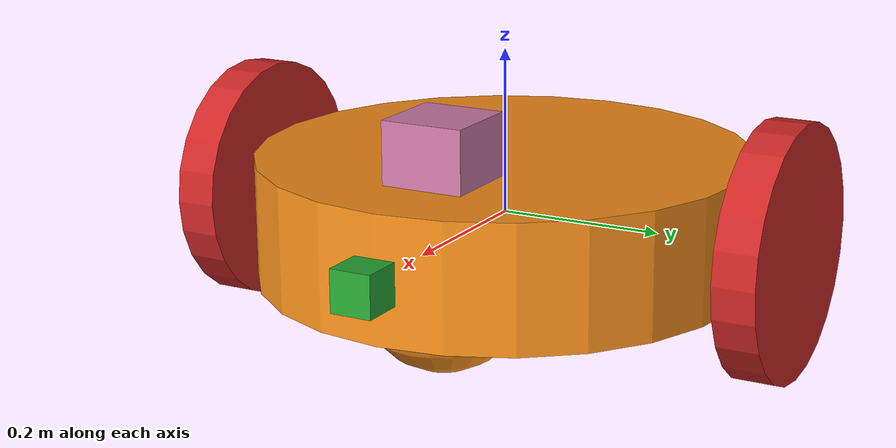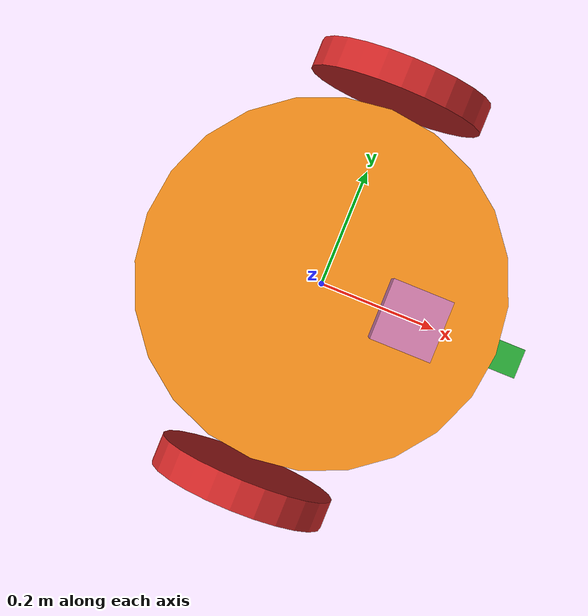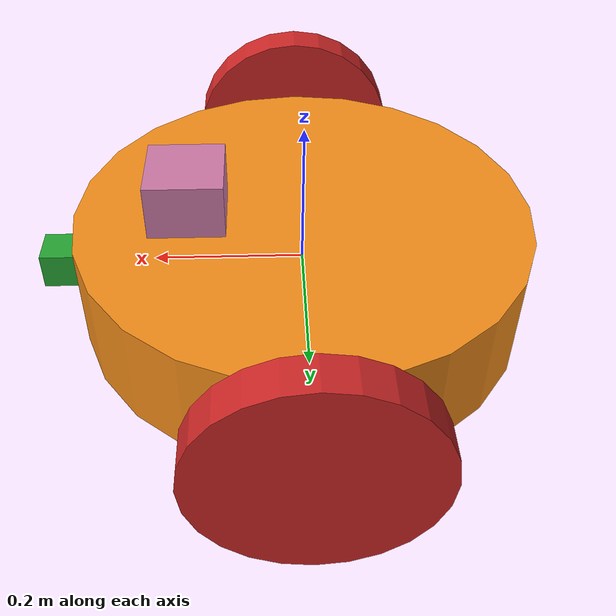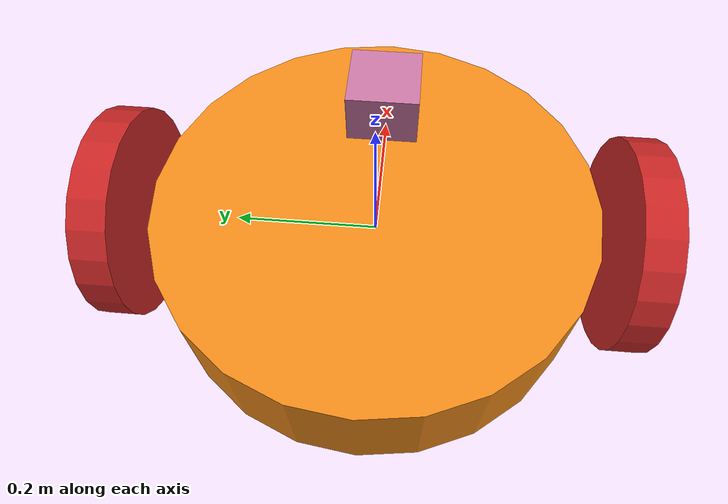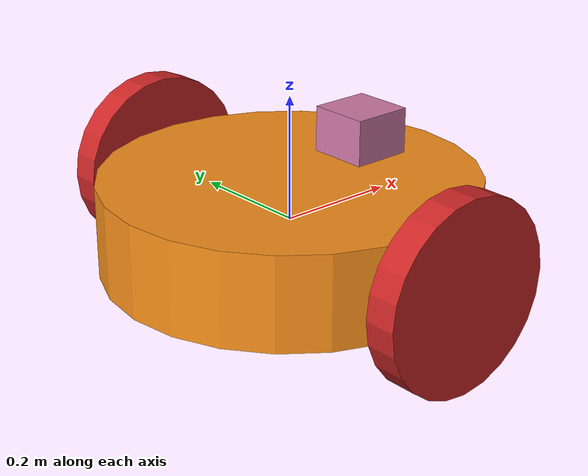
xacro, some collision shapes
<?xml version='1.0'?>

<robot name="my_robot" xmlns:xacro="http://www.ros.org/wiki/xacro">

  <xacro:include filename="$(find my_robot)/urdf/my_robot.gazebo" />

  <link name="robot_footprint"></link>

  <joint name="robot_footprint_joint" type="fixed">
    <origin xyz="0 0 0" rpy="0 0 0" />
    <parent link="robot_footprint"/>
    <child link="chassis" />
  </joint>

  <link name='chassis'>
    <pose>0 0 0.1 0 0 0</pose>

    <inertial>
      <mass value="15.0"/>
      <origin xyz="0.0 0 0" rpy=" 0 0 0"/>
      <inertia
          ixx="0.1" ixy="0" ixz="0"
          iyy="0.1" iyz="0"
          izz="0.1"
      />
    </inertial>

    <collision name='collision'>
      <origin xyz="0 0 0" rpy=" 0 0 0"/>
      <geometry>
        <cylinder radius="0.3" length='0.15'/>
      </geometry>
    </collision>

    <visual name='chassis_visual'>
      <origin xyz="0 0 0" rpy=" 0 0 0"/>
      <geometry>
        <cylinder radius="0.3" length='0.15'/>
      </geometry>
    </visual>

    <collision name='back_caster_collision'>
      <origin xyz="-0.15 0 -0.05" rpy=" 0 0 0"/>
      <geometry>
        <sphere radius="0.0999"/>
      </geometry>
    </collision>

    <visual name='back_caster_visual'>
      <origin xyz="-0.15 0 -0.05" rpy=" 0 0 0"/>
      <geometry>
        <sphere radius="0.1"/>
      </geometry>
    </visual>

    <collision name='front_caster_collision'>
      <origin xyz="0.15 0 -0.05" rpy=" 0 0 0"/>
      <geometry>
        <sphere radius="0.0999"/>
      </geometry>
    </collision>

    <visual name='front_caster_visual'>
      <origin xyz="0.15 0 -0.05" rpy=" 0 0 0"/>
      <geometry>
        <sphere radius="0.1"/>
      </geometry>
    </visual>

  </link>

  <link name='left_wheel'>
    <pose>0 0 0 0 0 0</pose>

    <inertial>
      <mass value="5.0"/>
      <origin xyz="0.0 0 0" rpy=" 0 1.5707 1.5707"/>
      <inertia
          ixx="0.1" ixy="0" ixz="0"
          iyy="0.1" iyz="0"
          izz="0.1"
      />
    </inertial>

    <collision name='left_wheel_collision'>
      <origin xyz="0 0 0" rpy=" 0 1.5707 1.5707"/>
      <geometry>
        <cylinder radius=".15" length='0.05'/>
      </geometry>
    </collision>

    <visual name='left_wheel_visual'>
      <origin xyz="0 0 0" rpy=" 0 1.5707 1.5707"/>
      <geometry>
        <cylinder radius=".15" length='0.05'/>
      </geometry>
    </visual>
  </link>

  <link name='right_wheel'>
    <pose>0 0 0 0 0 0</pose>

    <inertial>
      <mass value="5.0"/>
      <origin xyz="0.0 0 0" rpy=" 0 1.5707 1.5707"/>
      <inertia
          ixx="0.1" ixy="0" ixz="0"
          iyy="0.1" iyz="0"
          izz="0.1"
      />
    </inertial>

    <collision name='right_wheel_collision'>
      <origin xyz="0 0 0" rpy=" 0 1.5707 1.5707"/>
      <geometry>
        <cylinder radius=".15" length='0.05'/>
      </geometry>
    </collision>

    <visual name='right_wheel__visual'>
      <origin xyz="0 0 0" rpy=" 0 1.5707 1.5707"/>
      <geometry>
        <cylinder radius=".15" length='0.05'/>
      </geometry>
    </visual>
  </link>

  <link name='camera'>
    <pose>0 0 0 0 0 0</pose>

    <inertial>
      <mass value="0.1"/>
      <origin xyz="0.0 0 0" rpy=" 0 0 0"/>
      <inertia
          ixx="1e-6" ixy="0" ixz="0"
          iyy="1e-6" iyz="0"
          izz="1e-6"
      />
    </inertial>

    <collision name='camera_collision'>
      <origin xyz="0 0 0" rpy=" 0 0 0"/>
      <geometry>
        <box size = "0.05 0.05 0.05"/>
      </geometry>
    </collision>

    <visual name='camera__visual'>
      <origin xyz="0 0 0" rpy=" 0 0 0"/>
      <geometry>
        <box size = "0.05 0.05 0.05"/>
      </geometry>
    </visual>
  </link>

  <link name="camera_link_optical">
  </link>

  <joint name="camera_optical_joint" type="fixed">
    <origin xyz="0 0 0" rpy="-1.5707 0 -1.5707"/>
    <parent link="camera"/>
    <child link="camera_link_optical"/>
  </joint>

  <joint name="camera_joint" type="fixed">
    <origin xyz="0.325 0 0" rpy="0 0 0"/>
    <child link="camera"/>
    <parent link="chassis"/>
    <axis xyz="0 1 0"/>
  </joint>

  <joint type="continuous" name="left_wheel_hinge">
    <origin xyz="0 0.35 0" rpy="0 0 0"/>
    <child link="left_wheel"/>
    <parent link="chassis"/>
    <axis xyz="0 1 0" rpy="0 0 0"/>
    <limit effort="10000" velocity="1000"/>
    <dynamics damping="1.0" friction="1.0"/>
  </joint>

  <joint type="continuous" name="right_wheel_hinge">
    <origin xyz="0 -0.35 0" rpy="0 0 0"/>
    <child link="right_wheel"/>
    <parent link="chassis"/>
    <axis xyz="0 1 0" rpy="0 0 0"/>
    <limit effort="10000" velocity="1000"/>
    <dynamics damping="1.0" friction="1.0"/>
  </joint>

  <link name='hokuyo'>
    <pose>0 0 0 0 0 0</pose>

    <inertial>
      <mass value="1e-5"/>
      <origin xyz="0.0 0 0" rpy=" 0 0 0"/>
      <inertia
          ixx="1e-6" ixy="0" ixz="0"
          iyy="1e-6" iyz="0"
          izz="1e-6"
      />
    </inertial>

    <collision name='hokuyo_collision'>
      <origin xyz="0 0 0" rpy=" 0 0 0"/>
      <geometry>
        <box size = "0.1 0.1 0.1"/>
      </geometry>
    </collision>

    <visual name='hokuyo_visual'>
      <origin xyz="0 0 0" rpy=" 0 0 0"/>
      <geometry>
        <mesh filename = "package://my_robot/meshes/hokuyo.dae"/>
      </geometry>
    </visual>
  </link>

  <joint name="hokuyo_joint" type="fixed">
    <origin xyz="0.15 0 0.1" rpy="0 0 0"/>
    <child link="hokuyo"/>
    <parent link="chassis"/>
    <axis xyz="0 1 0"/>
  </joint>

  <gazebo reference="left_wheel">
    <material>Gazebo/Red</material>
  </gazebo>

  <gazebo reference="right_wheel">
    <material>Gazebo/Red</material>
  </gazebo>

  <gazebo reference="chassis">
    <material>Gazebo/Orange</material>
  </gazebo>

  <gazebo reference="camera">
    <material>Gazebo/Green</material>
  </gazebo>

  <gazebo reference="camera">
    <material>Gazebo/Green</material>
  </gazebo>

</robot>
